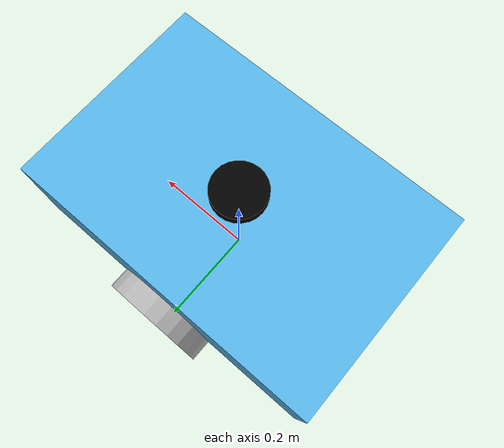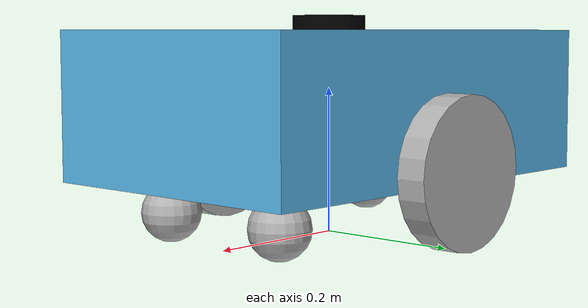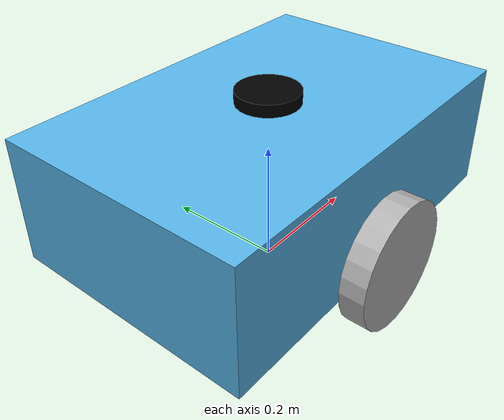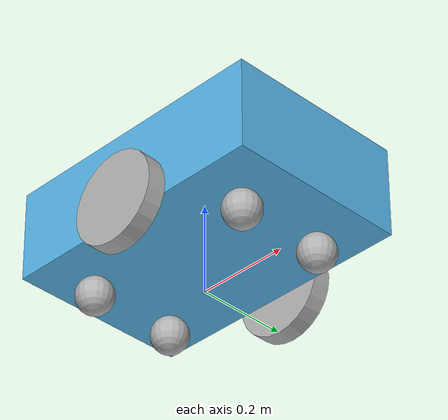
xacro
<?xml version="1.0"?>

<robot xmlns:xacro="http://www.ros.org/wiki/xacro" name="btkamr">

    <!-- Renk Tanımlamaları -->
    <material name="red">
        <color rgba="1 0 0 1"/>
    </material>

    <material name="green">
        <color rgba="0 1 0 1"/>
    </material>

    <material name="blue">
        <color rgba="0 0 1 1"/>
    </material>

    <material name="gray">
        <color rgba="0.7 0.7 0.7 1"/>
    </material>

    <material name="black">
        <color rgba="0 0 0 1"/>
    </material>

    <!-- Şase Nitelikleri -->

    <xacro:property name="chasis_len_x" value="0.6"/>
    <xacro:property name="chasis_len_y" value="0.4"/>
    <xacro:property name="chasis_len_z" value="0.2"/>
    <xacro:property name="base_chasis_offset" value="0.08"/>
    <xacro:property name="chasis_mass" value="2.0"/>

    <!-- Dosyaları Dahil Etme -->

    <xacro:include filename="./wheels.urdf.xacro" />
    <xacro:include filename="./g_plugins.urdf.xacro" />
    <xacro:include filename="./sensor_extensions.urdf.xacro" />

    <!-- Base Link -->

    <link name="base_footprint"/>

    <link name="base_link"/>

    <joint name="base_TO_footprint" type="fixed">
        <origin xyz="0.0 0.0 ${wh_radius}" rpy="0.0 0.0 0.0"/>
        <parent link="base_footprint"/>
        <child link="base_link"/>
    </joint>

    <!-- Şase Oluşturumu -->

    <joint name="base_TO_chasis" type="fixed">
        <origin xyz="0.0 0.0 ${base_chasis_offset}" rpy="0.0 0.0 0.0"/>
        <parent link="base_link"/>
        <child link="chasis"/>
    </joint>

    <link name="chasis">
        <inertial>
            <mass value="${chasis_mass}"/>
            <inertia
                ixx="${chasis_mass * (chasis_len_y * chasis_len_y + chasis_len_z * chasis_len_z) / 12.0}"
                iyy="${chasis_mass * (chasis_len_x * chasis_len_x + chasis_len_z * chasis_len_z) / 12.0}"
                izz="${chasis_mass * (chasis_len_x * chasis_len_x + chasis_len_y * chasis_len_y) / 12.0}"
                ixy="0" ixz="0" iyz="0"
            />
        </inertial>

        <visual>
            <geometry><box size="${chasis_len_x} ${chasis_len_y} ${chasis_len_z}"/></geometry>
        </visual>

        <collision>
            <geometry><box size="${chasis_len_x} ${chasis_len_y} ${chasis_len_z}"/></geometry>
        </collision>
    </link>

</robot>

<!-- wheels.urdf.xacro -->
<robot xmlns:xacro="http://www.ros.org/wiki/xacro" name="btkamr">

    <!-- Tahrik Teker Nitelikleri  -->

    <xacro:property name="wh_radius" value="0.1"/>
    <xacro:property name="wh_thick" value="0.04"/>
    <xacro:property name="wh_chasis_gap" value="0.001"/>
    <xacro:property name="wh_mass" value="1.0"/>

    <!-- Avare Teker Nitelikleri -->

    <xacro:property name="cwh_chasis_offset_xy" value="0.1"/>
    <!-- yarı çapı diğer niteliklere göre ayarlayalım -->
    <xacro:property name="cwh_radius" value="${(wh_radius - (chasis_len_z / 2.0 - base_chasis_offset)) / 2.0}"/>
    <xacro:property name="cwh_mass" value="0.00001"/>

    <!-- Tahrik Tekerleği Makrosu -->
    <xacro:macro name="create_wh" params="postfix yfact">

        <joint name="base_TO_wh_${postfix}" type="continuous">
            <origin xyz="0.0 ${yfact * (chasis_len_y / 2.0 + wh_thick / 2.0 + wh_chasis_gap)} 0.0" rpy="0.0 0.0 0.0"/>
            <parent link="base_link"/>
            <child link="wh_${postfix}"/>
            <axis xyz="0.0 1.0 0.0"/>
        </joint>

        <link name="wh_${postfix}">
            <inertial>
                <origin xyz="0.0 0.0 0.0" rpy="${pi / 2.0} 0.0 0.0"/>

                <mass value="${wh_mass}"/>
                <inertia
                    ixx="${wh_mass * (3*wh_radius*wh_radius + wh_thick*wh_thick) / 12.0}"
                    iyy="${wh_mass * (3*wh_radius*wh_radius + wh_thick*wh_thick) / 12.0}"
                    izz="${wh_mass * (wh_radius*wh_radius) / 2.0}"
                    ixy="0" ixz="0" iyz="0"
                />
            </inertial>

            <visual>
                <origin xyz="0.0 0.0 0.0" rpy="${pi / 2.0} 0.0 0.0"/>
                <geometry>
                    <cylinder radius="${wh_radius}" length="${wh_thick}"/>
                </geometry>
                <material name="gray"/>
            </visual>

            <collision>
                <origin xyz="0.0 0.0 0.0" rpy="${pi / 2.0} 0.0 0.0"/>
                <geometry>
                    <cylinder
                        radius="${wh_radius}"
                        length="${wh_thick}"/>
                </geometry>
            </collision>
        </link>

    </xacro:macro>

    <!-- Tahrik Tekerlekleri Oluşturumu -->

    <xacro:create_wh postfix="l" yfact="1.0"/> <!-- sol -->
    <xacro:create_wh postfix="r" yfact="-1.0"/> <!-- sağ -->

    <!-- Avare Teker Makrosu -->

    <xacro:macro name="create_cwh" params="postfix xfact yfact">

        <!-- Yaw joint: x ekseni etrafında dönme -->
        <joint name="chasis_TO_cwh_${postfix}" type="fixed">
            <origin xyz="${xfact * (chasis_len_x / 2.0 - cwh_chasis_offset_xy)}
                        ${yfact * (chasis_len_y / 2.0 - cwh_chasis_offset_xy)}
                        ${-1 * (chasis_len_z / 2.0 + cwh_radius)}" rpy="0 0 0"/>
            <parent link="chasis"/>
            <child link="cwh_${postfix}"/>
        </joint>

        <!-- BALL CASTER LINK -->
        <link name="cwh_${postfix}">

            <!-- Çok hafif top (dönüşlerde robotu tutmaması için) -->
            <inertial>
                <mass value="0.01"/>
                <origin xyz="0 0 0"/>
                <inertia
                    ixx="1e-5" ixy="0" ixz="0"
                    iyy="1e-5" iyz="0"
                    izz="1e-5"/>
            </inertial>

            <!-- Görsel -->
            <visual>
                <origin xyz="0 0 0" rpy="0 0 0"/>
                <geometry>
                    <sphere radius="${cwh_radius}"/>
                </geometry>
                <material name="gray"/>

            </visual>

            <!-- Çarpışma ve sürtünme ayarları -->
            <collision>
                <origin xyz="0 0 0" rpy="0 0 0"/>
                <geometry>
                    <sphere radius="${cwh_radius}"/>
                </geometry>
            </collision>
        </link>

        <!-- gazebo için sürtünme değerlerini azaltıyoruz -->
        <gazebo reference="cwh_${postfix}">
            <collision>
                <surface>
                    <friction>
                        <ode>
                            <mu>0.001</mu>    <!-- temel sürtünme -->
                            <mu2>0.001</mu2>  <!-- ikinci eksen sürtünmesi -->
                            <slip1>1.0</slip1>
                            <slip2>1.0</slip2>
                        </ode>
                    </friction>
                    <bounce>
                        <restitution_coefficient>0.0</restitution_coefficient>
                    </bounce>
                </surface>
            </collision>
        </gazebo>

    </xacro:macro>

    <!-- Avare Tekerlerin Kullanımı -->

    <xacro:create_cwh postfix="lf" xfact="1.0" yfact="1.0"/>
    <xacro:create_cwh postfix="lb" xfact="-1.0" yfact="1.0"/>
    <xacro:create_cwh postfix="rf" xfact="1.0" yfact="-1.0"/>
    <xacro:create_cwh postfix="rb" xfact="-1.0" yfact="-1.0"/>

</robot>

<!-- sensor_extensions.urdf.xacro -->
<robot xmlns:xacro="http://www.ros.org/wiki/xacro" name="btkamr">

    <xacro:property name="lidar_radius" value="0.05" />
    <xacro:property name="lidar_length" value="0.02" />

    <link name="lidar">
        <visual>
            <geometry>
                <cylinder radius="${lidar_radius}" length="${lidar_length}"/>
            </geometry>
            <material name="black"/>
        </visual>

        <collision>
            <geometry>
                <cylinder radius="${lidar_radius}" length="${lidar_length}"/>
            </geometry>
        </collision>
    </link>

    <joint name="chasis_TO_lidar" type="fixed">
        <parent link="chasis" />
        <child link="lidar" />
        <origin xyz="0 0 ${chasis_len_z / 2.0 + lidar_length / 2.0}" rpy="0 0 0" />
    </joint>

    <gazebo>
        <!-- Genel sensör sistemi: Tüm sensörlerin temel çalışma altyapısını sağlar -->
        <plugin filename="gz-sim-sensors-system"
                name="gz::sim::systems::Sensors">

            <!-- Kamera ve GPU lidar gibi sensörler için render motoru.
                Ogre2 çoğu modern simülasyon için önerilir. -->
            <render_engine>ogre2</render_engine>
        </plugin>
    </gazebo>

    <gazebo reference="lidar">
        <sensor name="gpu_lidar" type="gpu_lidar">
            <!-- Sensörün modele göre konumu -->
            <pose>0 0 0 0 0 0</pose>

            <!-- Yayınlanacak Gazebo topic adı -->
            <topic>lidar/scan</topic>

            <!-- Saniyede 10 kez ölçüm üret -->
            <update_rate>10</update_rate>

            <!-- GPU tabanlı ray sensor yapılandırması -->
            <ray>
                <scan>
                <horizontal>
                    <!-- Kaç adet ışın gönderileceği -->
                    <samples>640</samples>

                    <!-- Işın çözünürlüğü (1 = birebir, 2 = her 2 ışında 1 hesaplama) -->
                    <resolution>1</resolution>

                    <!-- Taramanın sol sınırı -->
                    <min_angle>-1.57</min_angle>

                    <!-- Taramanın sağ sınırı -->
                    <max_angle>1.57</max_angle>
                </horizontal>
                </scan>

                <!-- Mesafe ölçüm parametreleri -->
                <range>
                <!-- Sensörün minimum algılama mesafesi -->
                <min>0.08</min>

                <!-- Maksimum algılama mesafesi -->
                <max>15.0</max>

                <!-- Mesafe çözünürlüğü -->
                <resolution>0.01</resolution>
                </range>
            </ray>

            <!-- Veriyi kaydedilebilir hâle getirmek için -->
            <always_on>true</always_on>

            <!-- Gazebo GUI’de lazer tarama çizgilerini göster -->
            <visualize>true</visualize>

            <gz_frame_id>lidar</gz_frame_id>
        </sensor>

    </gazebo>

</robot>
